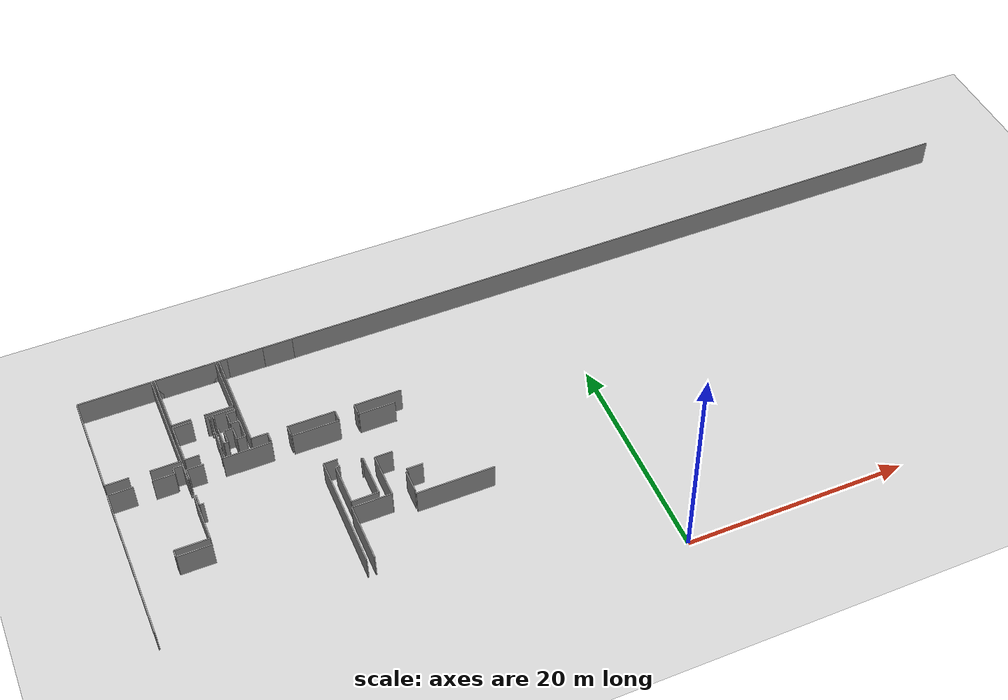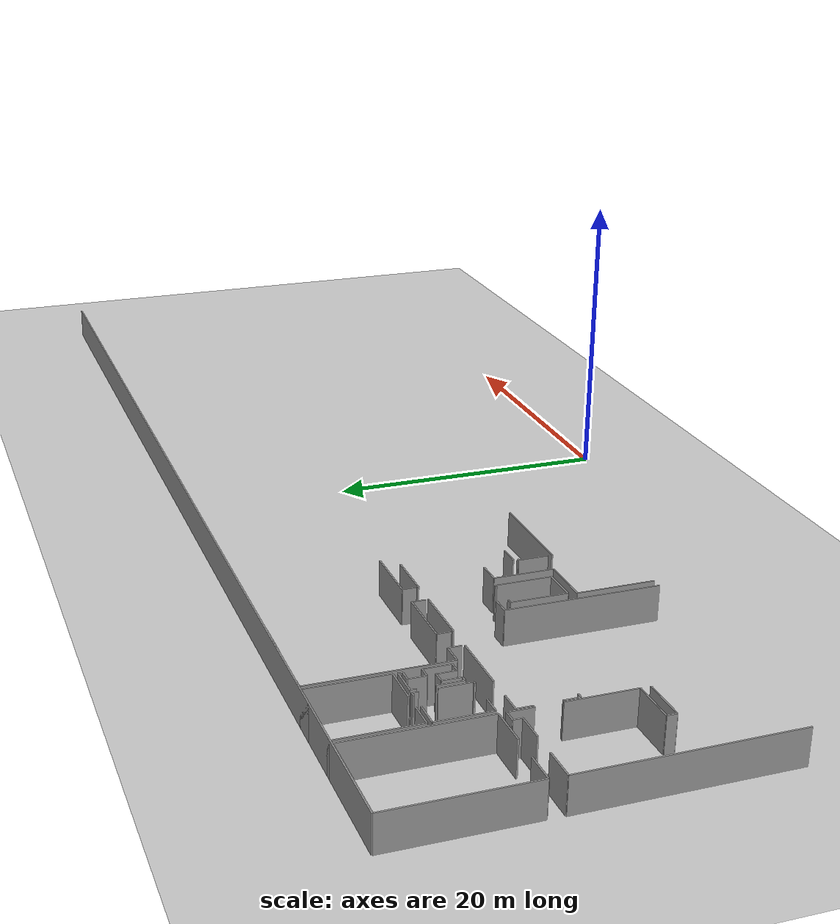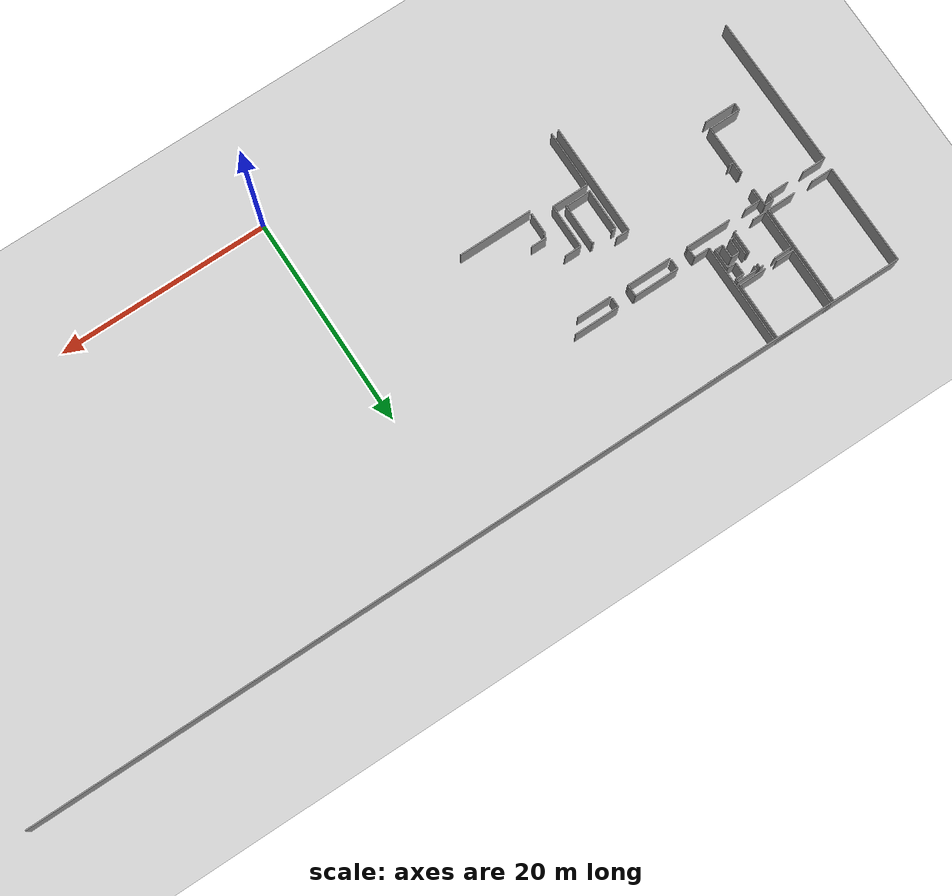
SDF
<sdf version="1.6">
 <world name="default">
  <model name="ground_plane">
   <static>1</static>
   <link name="link">
    <collision name="collision">
     <geometry><plane><normal>0 0 1</normal><size>100 100</size></plane></geometry>
     <surface><friction><ode><mu>100</mu><mu2>50</mu2></ode></friction></surface>
    </collision>
    <visual name="visual">
     <cast_shadows>0</cast_shadows>
     <geometry><plane><normal>0 0 1</normal><size>100 100</size></plane></geometry>
     <material>
      <script><uri>file://media/materials/scripts/gazebo.material</uri><name>Gazebo/Grey</name></script>
     </material>
    </visual>
   </link>
  </model>
  <model name="50052749">
   <static>1</static>
   <link name="Wall_0">
    <collision name="Wall_0_Collision">
     <geometry><box><size>2.05079957599 0.1 2.5</size></box></geometry>
     <pose>1.025399788 0 1.25 0 0 0</pose>
    </collision>
    <visual name="Wall_0_Visual">
     <pose>1.025399788 0 1.25 0 0 0</pose>
     <geometry><box><size>2.05079957599 0.1 2.5</size></box></geometry>
     <material>
      <script><uri>file://media/materials/scripts/gazebo.material</uri><name>Gazebo/Grey</name></script>
      <ambient>1 1 1 1</ambient>
     </material>
    </visual>
    <pose>0.0330937732988 -9.48650129078 0 0 0 0.0</pose>
   </link>
   <link name="Wall_1">
    <collision name="Wall_1_Collision">
     <geometry><box><size>2.67488981422 0.1 2.5</size></box></geometry>
     <pose>1.33744490711 0 1.25 0 0 0</pose>
    </collision>
    <visual name="Wall_1_Visual">
     <pose>1.33744490711 0 1.25 0 0 0</pose>
     <geometry><box><size>2.67488981422 0.1 2.5</size></box></geometry>
     <material>
      <script><uri>file://media/materials/scripts/gazebo.material</uri><name>Gazebo/Grey</name></script>
      <ambient>1 1 1 1</ambient>
     </material>
    </visual>
    <pose>3.85472721094 -9.48650129078 0 0 0 0.0</pose>
   </link>
   <link name="Wall_2">
    <collision name="Wall_2_Collision">
     <geometry><box><size>9.47166615103 0.1 2.5</size></box></geometry>
     <pose>4.73583307551 0 1.25 0 0 0</pose>
    </collision>
    <visual name="Wall_2_Visual">
     <pose>4.73583307551 0 1.25 0 0 0</pose>
     <geometry><box><size>9.47166615103 0.1 2.5</size></box></geometry>
     <material>
      <script><uri>file://media/materials/scripts/gazebo.material</uri><name>Gazebo/Grey</name></script>
      <ambient>1 1 1 1</ambient>
     </material>
    </visual>
    <pose>6.52961702516 -9.48650129078 0 0 0 1.57079632679</pose>
   </link>
   <link name="Wall_3">
    <collision name="Wall_3_Collision">
     <geometry><box><size>6.51960013593 0.1 2.5</size></box></geometry>
     <pose>3.25980006796 0 1.25 0 0 0</pose>
    </collision>
    <visual name="Wall_3_Visual">
     <pose>3.25980006796 0 1.25 0 0 0</pose>
     <geometry><box><size>6.51960013593 0.1 2.5</size></box></geometry>
     <material>
      <script><uri>file://media/materials/scripts/gazebo.material</uri><name>Gazebo/Grey</name></script>
      <ambient>1 1 1 1</ambient>
     </material>
    </visual>
    <pose>6.52961702516 -0.0148351397546 0 0 0 3.14159265359</pose>
   </link>
   <link name="Wall_4">
    <collision name="Wall_4_Collision">
     <geometry><box><size>9.47169426339 0.1 2.5</size></box></geometry>
     <pose>4.73584713169 0 1.25 0 0 0</pose>
    </collision>
    <visual name="Wall_4_Visual">
     <pose>4.73584713169 0 1.25 0 0 0</pose>
     <geometry><box><size>9.47169426339 0.1 2.5</size></box></geometry>
     <material>
      <script><uri>file://media/materials/scripts/gazebo.material</uri><name>Gazebo/Grey</name></script>
      <ambient>1 1 1 1</ambient>
     </material>
    </visual>
    <pose>0.010016889236 -0.0148351397546 0 0 0 -1.5683599193</pose>
   </link>
   <link name="Wall_7">
    <collision name="Wall_7_Collision">
     <geometry><box><size>2.99948774389 0.1 2.5</size></box></geometry>
     <pose>1.49974387195 0 1.25 0 0 0</pose>
    </collision>
    <visual name="Wall_7_Visual">
     <pose>1.49974387195 0 1.25 0 0 0</pose>
     <geometry><box><size>2.99948774389 0.1 2.5</size></box></geometry>
     <material>
      <script><uri>file://media/materials/scripts/gazebo.material</uri><name>Gazebo/Grey</name></script>
      <ambient>1 1 1 1</ambient>
     </material>
    </visual>
    <pose>6.51998052412 -18.7221999625 0 0 0 3.14159265359</pose>
   </link>
   <link name="Wall_8">
    <collision name="Wall_8_Collision">
     <geometry><box><size>0.65933954465 0.1 2.5</size></box></geometry>
     <pose>0.329669772325 0 1.25 0 0 0</pose>
    </collision>
    <visual name="Wall_8_Visual">
     <pose>0.329669772325 0 1.25 0 0 0</pose>
     <geometry><box><size>0.65933954465 0.1 2.5</size></box></geometry>
     <material>
      <script><uri>file://media/materials/scripts/gazebo.material</uri><name>Gazebo/Grey</name></script>
      <ambient>1 1 1 1</ambient>
     </material>
    </visual>
    <pose>3.52049278023 -18.7221999625 0 0 0 1.57079632679</pose>
   </link>
   <link name="Wall_9">
    <collision name="Wall_9_Collision">
     <geometry><box><size>3.00506677081 0.1 2.5</size></box></geometry>
     <pose>1.5025333854 0 1.25 0 0 0</pose>
    </collision>
    <visual name="Wall_9_Visual">
     <pose>1.5025333854 0 1.25 0 0 0</pose>
     <geometry><box><size>3.00506677081 0.1 2.5</size></box></geometry>
     <material>
      <script><uri>file://media/materials/scripts/gazebo.material</uri><name>Gazebo/Grey</name></script>
      <ambient>1 1 1 1</ambient>
     </material>
    </visual>
    <pose>3.52049278023 -18.0628604178 0 0 0 0.0</pose>
   </link>
   <link name="Wall_10">
    <collision name="Wall_10_Collision">
     <geometry><box><size>4.69246882085 0.1 2.5</size></box></geometry>
     <pose>2.34623441042 0 1.25 0 0 0</pose>
    </collision>
    <visual name="Wall_10_Visual">
     <pose>2.34623441042 0 1.25 0 0 0</pose>
     <geometry><box><size>4.69246882085 0.1 2.5</size></box></geometry>
     <material>
      <script><uri>file://media/materials/scripts/gazebo.material</uri><name>Gazebo/Grey</name></script>
      <ambient>1 1 1 1</ambient>
     </material>
    </visual>
    <pose>6.52555955104 -18.0628604178 0 0 0 1.57079632679</pose>
   </link>
   <link name="Wall_11">
    <collision name="Wall_11_Collision">
     <geometry><box><size>1.68435894445 0.1 2.5</size></box></geometry>
     <pose>0.842179472224 0 1.25 0 0 0</pose>
    </collision>
    <visual name="Wall_11_Visual">
     <pose>0.842179472224 0 1.25 0 0 0</pose>
     <geometry><box><size>1.68435894445 0.1 2.5</size></box></geometry>
     <material>
      <script><uri>file://media/materials/scripts/gazebo.material</uri><name>Gazebo/Grey</name></script>
      <ambient>1 1 1 1</ambient>
     </material>
    </visual>
    <pose>6.52555955104 -11.644950727 0 0 0 1.57079632679</pose>
   </link>
   <link name="Wall_12">
    <collision name="Wall_12_Collision">
     <geometry><box><size>0.826329963939 0.1 2.5</size></box></geometry>
     <pose>0.41316498197 0 1.25 0 0 0</pose>
    </collision>
    <visual name="Wall_12_Visual">
     <pose>0.41316498197 0 1.25 0 0 0</pose>
     <geometry><box><size>0.826329963939 0.1 2.5</size></box></geometry>
     <material>
      <script><uri>file://media/materials/scripts/gazebo.material</uri><name>Gazebo/Grey</name></script>
      <ambient>1 1 1 1</ambient>
     </material>
    </visual>
    <pose>6.52555955104 -9.9605917826 0 0 0 3.14159265359</pose>
   </link>
   <link name="Wall_13">
    <collision name="Wall_13_Collision">
     <geometry><box><size>0.608621118138 0.1 2.5</size></box></geometry>
     <pose>0.304310559069 0 1.25 0 0 0</pose>
    </collision>
    <visual name="Wall_13_Visual">
     <pose>0.304310559069 0 1.25 0 0 0</pose>
     <geometry><box><size>0.608621118138 0.1 2.5</size></box></geometry>
     <material>
      <script><uri>file://media/materials/scripts/gazebo.material</uri><name>Gazebo/Grey</name></script>
      <ambient>1 1 1 1</ambient>
     </material>
    </visual>
    <pose>5.6992295871 -9.9605917826 0 0 0 -1.57079632679</pose>
   </link>
   <link name="Wall_14">
    <collision name="Wall_14_Collision">
     <geometry><box><size>1.93414719502 0.1 2.5</size></box></geometry>
     <pose>0.967073597509 0 1.25 0 0 0</pose>
    </collision>
    <visual name="Wall_14_Visual">
     <pose>0.967073597509 0 1.25 0 0 0</pose>
     <geometry><box><size>1.93414719502 0.1 2.5</size></box></geometry>
     <material>
      <script><uri>file://media/materials/scripts/gazebo.material</uri><name>Gazebo/Grey</name></script>
      <ambient>1 1 1 1</ambient>
     </material>
    </visual>
    <pose>5.6992295871 -10.5692129007 0 0 0 3.14159265359</pose>
   </link>
   <link name="Wall_15">
    <collision name="Wall_15_Collision">
     <geometry><box><size>2.19002165677 0.1 2.5</size></box></geometry>
     <pose>1.09501082838 0 1.25 0 0 0</pose>
    </collision>
    <visual name="Wall_15_Visual">
     <pose>1.09501082838 0 1.25 0 0 0</pose>
     <geometry><box><size>2.19002165677 0.1 2.5</size></box></geometry>
     <material>
      <script><uri>file://media/materials/scripts/gazebo.material</uri><name>Gazebo/Grey</name></script>
      <ambient>1 1 1 1</ambient>
     </material>
    </visual>
    <pose>2.19002165677 -10.5692129007 0 0 0 3.14159265359</pose>
   </link>
   <link name="Wall_16">
    <collision name="Wall_16_Collision">
     <geometry><box><size>14.3738652075 0.1 2.5</size></box></geometry>
     <pose>7.18693260374 0 1.25 0 0 0</pose>
    </collision>
    <visual name="Wall_16_Visual">
     <pose>7.18693260374 0 1.25 0 0 0</pose>
     <geometry><box><size>14.3738652075 0.1 2.5</size></box></geometry>
     <material>
      <script><uri>file://media/materials/scripts/gazebo.material</uri><name>Gazebo/Grey</name></script>
      <ambient>1 1 1 1</ambient>
     </material>
    </visual>
    <pose>0.0 -10.5692129007 0 0 0 -1.56343048113</pose>
   </link>
   <link name="Wall_17">
    <collision name="Wall_17_Collision">
     <geometry><box><size>5.46212094316 0.1 2.5</size></box></geometry>
     <pose>2.73106047158 0 1.25 0 0 0</pose>
    </collision>
    <visual name="Wall_17_Visual">
     <pose>2.73106047158 0 1.25 0 0 0</pose>
     <geometry><box><size>5.46212094316 0.1 2.5</size></box></geometry>
     <material>
      <script><uri>file://media/materials/scripts/gazebo.material</uri><name>Gazebo/Grey</name></script>
      <ambient>1 1 1 1</ambient>
     </material>
    </visual>
    <pose>6.82492506352 -5.46212094316 0 0 0 1.57079632679</pose>
   </link>
   <link name="Wall_18">
    <collision name="Wall_18_Collision">
     <geometry><box><size>0.476119228877 0.1 2.5</size></box></geometry>
     <pose>0.238059614439 0 1.25 0 0 0</pose>
    </collision>
    <visual name="Wall_18_Visual">
     <pose>0.238059614439 0 1.25 0 0 0</pose>
     <geometry><box><size>0.476119228877 0.1 2.5</size></box></geometry>
     <material>
      <script><uri>file://media/materials/scripts/gazebo.material</uri><name>Gazebo/Grey</name></script>
      <ambient>1 1 1 1</ambient>
     </material>
    </visual>
    <pose>6.82492506352 -0.0 0 0 0 0.0</pose>
   </link>
   <link name="Wall_19">
    <collision name="Wall_19_Collision">
     <geometry><box><size>1.69640457074 0.1 2.5</size></box></geometry>
     <pose>0.848202285372 0 1.25 0 0 0</pose>
    </collision>
    <visual name="Wall_19_Visual">
     <pose>0.848202285372 0 1.25 0 0 0</pose>
     <geometry><box><size>1.69640457074 0.1 2.5</size></box></geometry>
     <material>
      <script><uri>file://media/materials/scripts/gazebo.material</uri><name>Gazebo/Grey</name></script>
      <ambient>1 1 1 1</ambient>
     </material>
    </visual>
    <pose>10.5706076575 -0.0 0 0 0 0.0</pose>
   </link>
   <link name="Wall_20">
    <collision name="Wall_20_Collision">
     <geometry><box><size>5.44436949388 0.1 2.5</size></box></geometry>
     <pose>2.72218474694 0 1.25 0 0 0</pose>
    </collision>
    <visual name="Wall_20_Visual">
     <pose>2.72218474694 0 1.25 0 0 0</pose>
     <geometry><box><size>5.44436949388 0.1 2.5</size></box></geometry>
     <material>
      <script><uri>file://media/materials/scripts/gazebo.material</uri><name>Gazebo/Grey</name></script>
      <ambient>1 1 1 1</ambient>
     </material>
    </visual>
    <pose>12.2670122282 -0.0 0 0 0 -1.57079632679</pose>
   </link>
   <link name="Wall_21">
    <collision name="Wall_21_Collision">
     <geometry><box><size>2.57535490219 0.1 2.5</size></box></geometry>
     <pose>1.28767745109 0 1.25 0 0 0</pose>
    </collision>
    <visual name="Wall_21_Visual">
     <pose>1.28767745109 0 1.25 0 0 0</pose>
     <geometry><box><size>2.57535490219 0.1 2.5</size></box></geometry>
     <material>
      <script><uri>file://media/materials/scripts/gazebo.material</uri><name>Gazebo/Grey</name></script>
      <ambient>1 1 1 1</ambient>
     </material>
    </visual>
    <pose>12.2670122282 -5.44436949388 0 0 0 3.14159265359</pose>
   </link>
   <link name="Wall_22">
    <collision name="Wall_22_Collision">
     <geometry><box><size>1.68457927209 0.1 2.5</size></box></geometry>
     <pose>0.842289636044 0 1.25 0 0 0</pose>
    </collision>
    <visual name="Wall_22_Visual">
     <pose>0.842289636044 0 1.25 0 0 0</pose>
     <geometry><box><size>1.68457927209 0.1 2.5</size></box></geometry>
     <material>
      <script><uri>file://media/materials/scripts/gazebo.material</uri><name>Gazebo/Grey</name></script>
      <ambient>1 1 1 1</ambient>
     </material>
    </visual>
    <pose>8.50941080404 -5.44436949388 0 0 0 -3.13105484269</pose>
   </link>
   <link name="Wall_23">
    <collision name="Wall_23_Collision">
     <geometry><box><size>1.24767329218 0.1 2.5</size></box></geometry>
     <pose>0.623836646092 0 1.25 0 0 0</pose>
    </collision>
    <visual name="Wall_23_Visual">
     <pose>0.623836646092 0 1.25 0 0 0</pose>
     <geometry><box><size>1.24767329218 0.1 2.5</size></box></geometry>
     <material>
      <script><uri>file://media/materials/scripts/gazebo.material</uri><name>Gazebo/Grey</name></script>
      <ambient>1 1 1 1</ambient>
     </material>
    </visual>
    <pose>6.83151845897 -9.47737197401 0 0 0 0.0</pose>
   </link>
   <link name="Wall_24">
    <collision name="Wall_24_Collision">
     <geometry><box><size>0.189052934822 0.1 2.5</size></box></geometry>
     <pose>0.0945264674109 0 1.25 0 0 0</pose>
    </collision>
    <visual name="Wall_24_Visual">
     <pose>0.0945264674109 0 1.25 0 0 0</pose>
     <geometry><box><size>0.189052934822 0.1 2.5</size></box></geometry>
     <material>
      <script><uri>file://media/materials/scripts/gazebo.material</uri><name>Gazebo/Grey</name></script>
      <ambient>1 1 1 1</ambient>
     </material>
    </visual>
    <pose>9.82834348547 -9.47737197401 0 0 0 0.0</pose>
   </link>
   <link name="Wall_25">
    <collision name="Wall_25_Collision">
     <geometry><box><size>2.15844943626 0.1 2.5</size></box></geometry>
     <pose>1.07922471813 0 1.25 0 0 0</pose>
    </collision>
    <visual name="Wall_25_Visual">
     <pose>1.07922471813 0 1.25 0 0 0</pose>
     <geometry><box><size>2.15844943626 0.1 2.5</size></box></geometry>
     <material>
      <script><uri>file://media/materials/scripts/gazebo.material</uri><name>Gazebo/Grey</name></script>
      <ambient>1 1 1 1</ambient>
     </material>
    </visual>
    <pose>10.0173964203 -9.47737197401 0 0 0 1.57079632679</pose>
   </link>
   <link name="Wall_26">
    <collision name="Wall_26_Collision">
     <geometry><box><size>0.38913712741 0.1 2.5</size></box></geometry>
     <pose>0.194568563705 0 1.25 0 0 0</pose>
    </collision>
    <visual name="Wall_26_Visual">
     <pose>0.194568563705 0 1.25 0 0 0</pose>
     <geometry><box><size>0.38913712741 0.1 2.5</size></box></geometry>
     <material>
      <script><uri>file://media/materials/scripts/gazebo.material</uri><name>Gazebo/Grey</name></script>
      <ambient>1 1 1 1</ambient>
     </material>
    </visual>
    <pose>10.0173964203 -6.14580533254 0 0 0 1.57079632679</pose>
   </link>
   <link name="Wall_27">
    <collision name="Wall_27_Collision">
     <geometry><box><size>0.339813457627 0.1 2.5</size></box></geometry>
     <pose>0.169906728814 0 1.25 0 0 0</pose>
    </collision>
    <visual name="Wall_27_Visual">
     <pose>0.169906728814 0 1.25 0 0 0</pose>
     <geometry><box><size>0.339813457627 0.1 2.5</size></box></geometry>
     <material>
      <script><uri>file://media/materials/scripts/gazebo.material</uri><name>Gazebo/Grey</name></script>
      <ambient>1 1 1 1</ambient>
     </material>
    </visual>
    <pose>10.0173964203 -5.75666820513 0 0 0 3.14159265359</pose>
   </link>
   <link name="Wall_28">
    <collision name="Wall_28_Collision">
     <geometry><box><size>1.68309098379 0.1 2.5</size></box></geometry>
     <pose>0.841545491893 0 1.25 0 0 0</pose>
    </collision>
    <visual name="Wall_28_Visual">
     <pose>0.841545491893 0 1.25 0 0 0</pose>
     <geometry><box><size>1.68309098379 0.1 2.5</size></box></geometry>
     <material>
      <script><uri>file://media/materials/scripts/gazebo.material</uri><name>Gazebo/Grey</name></script>
      <ambient>1 1 1 1</ambient>
     </material>
    </visual>
    <pose>8.51093235683 -5.75666820513 0 0 0 3.14159265359</pose>
   </link>
   <link name="Wall_29">
    <collision name="Wall_29_Collision">
     <geometry><box><size>3.72070558588 0.1 2.5</size></box></geometry>
     <pose>1.86035279294 0 1.25 0 0 0</pose>
    </collision>
    <visual name="Wall_29_Visual">
     <pose>1.86035279294 0 1.25 0 0 0</pose>
     <geometry><box><size>3.72070558588 0.1 2.5</size></box></geometry>
     <material>
      <script><uri>file://media/materials/scripts/gazebo.material</uri><name>Gazebo/Grey</name></script>
      <ambient>1 1 1 1</ambient>
     </material>
    </visual>
    <pose>6.82784137305 -5.75666820513 0 0 0 -1.56980805013</pose>
   </link>
   <link name="Wall_30">
    <collision name="Wall_30_Collision">
     <geometry><box><size>1.76918551279 0.1 2.5</size></box></geometry>
     <pose>0.884592756394 0 1.25 0 0 0</pose>
    </collision>
    <visual name="Wall_30_Visual">
     <pose>0.884592756394 0 1.25 0 0 0</pose>
     <geometry><box><size>1.76918551279 0.1 2.5</size></box></geometry>
     <material>
      <script><uri>file://media/materials/scripts/gazebo.material</uri><name>Gazebo/Grey</name></script>
      <ambient>1 1 1 1</ambient>
     </material>
    </visual>
    <pose>10.3408531854 -9.08810805054 0 0 0 1.57079632679</pose>
   </link>
   <link name="Wall_31">
    <collision name="Wall_31_Collision">
     <geometry><box><size>0.398012852049 0.1 2.5</size></box></geometry>
     <pose>0.199006426025 0 1.25 0 0 0</pose>
    </collision>
    <visual name="Wall_31_Visual">
     <pose>0.199006426025 0 1.25 0 0 0</pose>
     <geometry><box><size>0.398012852049 0.1 2.5</size></box></geometry>
     <material>
      <script><uri>file://media/materials/scripts/gazebo.material</uri><name>Gazebo/Grey</name></script>
      <ambient>1 1 1 1</ambient>
     </material>
    </visual>
    <pose>10.3408531854 -6.16140124869 0 0 0 1.57079632679</pose>
   </link>
   <link name="Wall_32">
    <collision name="Wall_32_Collision">
     <geometry><box><size>1.91411341655 0.1 2.5</size></box></geometry>
     <pose>0.957056708273 0 1.25 0 0 0</pose>
    </collision>
    <visual name="Wall_32_Visual">
     <pose>0.957056708273 0 1.25 0 0 0</pose>
     <geometry><box><size>1.91411341655 0.1 2.5</size></box></geometry>
     <material>
      <script><uri>file://media/materials/scripts/gazebo.material</uri><name>Gazebo/Grey</name></script>
      <ambient>1 1 1 1</ambient>
     </material>
    </visual>
    <pose>10.3408531854 -5.76338839664 0 0 0 0.0</pose>
   </link>
   <link name="Wall_33">
    <collision name="Wall_33_Collision">
     <geometry><box><size>0.279965714344 0.1 2.5</size></box></geometry>
     <pose>0.139982857172 0 1.25 0 0 0</pose>
    </collision>
    <visual name="Wall_33_Visual">
     <pose>0.139982857172 0 1.25 0 0 0</pose>
     <geometry><box><size>0.279965714344 0.1 2.5</size></box></geometry>
     <material>
      <script><uri>file://media/materials/scripts/gazebo.material</uri><name>Gazebo/Grey</name></script>
      <ambient>1 1 1 1</ambient>
     </material>
    </visual>
    <pose>12.2549666019 -5.76338839664 0 0 0 -1.57079632679</pose>
   </link>
   <link name="Wall_34">
    <collision name="Wall_34_Collision">
     <geometry><box><size>0.781063768278 0.1 2.5</size></box></geometry>
     <pose>0.390531884139 0 1.25 0 0 0</pose>
    </collision>
    <visual name="Wall_34_Visual">
     <pose>0.390531884139 0 1.25 0 0 0</pose>
     <geometry><box><size>0.781063768278 0.1 2.5</size></box></geometry>
     <material>
      <script><uri>file://media/materials/scripts/gazebo.material</uri><name>Gazebo/Grey</name></script>
      <ambient>1 1 1 1</ambient>
     </material>
    </visual>
    <pose>12.2549666019 -6.04335411098 0 0 0 3.14159265359</pose>
   </link>
   <link name="Wall_35">
    <collision name="Wall_35_Collision">
     <geometry><box><size>1.17083487602 0.1 2.5</size></box></geometry>
     <pose>0.585417438009 0 1.25 0 0 0</pose>
    </collision>
    <visual name="Wall_35_Visual">
     <pose>0.585417438009 0 1.25 0 0 0</pose>
     <geometry><box><size>1.17083487602 0.1 2.5</size></box></geometry>
     <material>
      <script><uri>file://media/materials/scripts/gazebo.material</uri><name>Gazebo/Grey</name></script>
      <ambient>1 1 1 1</ambient>
     </material>
    </visual>
    <pose>11.4739028336 -6.04335411098 0 0 0 -1.57079632679</pose>
   </link>
   <link name="Wall_36">
    <collision name="Wall_36_Collision">
     <geometry><box><size>0.783472893537 0.1 2.5</size></box></geometry>
     <pose>0.391736446768 0 1.25 0 0 0</pose>
    </collision>
    <visual name="Wall_36_Visual">
     <pose>0.391736446768 0 1.25 0 0 0</pose>
     <geometry><box><size>0.783472893537 0.1 2.5</size></box></geometry>
     <material>
      <script><uri>file://media/materials/scripts/gazebo.material</uri><name>Gazebo/Grey</name></script>
      <ambient>1 1 1 1</ambient>
     </material>
    </visual>
    <pose>11.4739028336 -7.214188987 0 0 0 0.0</pose>
   </link>
   <link name="Wall_37">
    <collision name="Wall_37_Collision">
     <geometry><box><size>1.84716509355 0.1 2.5</size></box></geometry>
     <pose>0.923582546775 0 1.25 0 0 0</pose>
    </collision>
    <visual name="Wall_37_Visual">
     <pose>0.923582546775 0 1.25 0 0 0</pose>
     <geometry><box><size>1.84716509355 0.1 2.5</size></box></geometry>
     <material>
      <script><uri>file://media/materials/scripts/gazebo.material</uri><name>Gazebo/Grey</name></script>
      <ambient>1 1 1 1</ambient>
     </material>
    </visual>
    <pose>12.2573757272 -7.214188987 0 0 0 -1.57079632679</pose>
   </link>
   <link name="Wall_38">
    <collision name="Wall_38_Collision">
     <geometry><box><size>0.758240476347 0.1 2.5</size></box></geometry>
     <pose>0.379120238174 0 1.25 0 0 0</pose>
    </collision>
    <visual name="Wall_38_Visual">
     <pose>0.379120238174 0 1.25 0 0 0</pose>
     <geometry><box><size>0.758240476347 0.1 2.5</size></box></geometry>
     <material>
      <script><uri>file://media/materials/scripts/gazebo.material</uri><name>Gazebo/Grey</name></script>
      <ambient>1 1 1 1</ambient>
     </material>
    </visual>
    <pose>12.2573757272 -9.06135408055 0 0 0 3.14159265359</pose>
   </link>
   <link name="Wall_39">
    <collision name="Wall_39_Collision">
     <geometry><box><size>1.28355657894 0.1 2.5</size></box></geometry>
     <pose>0.64177828947 0 1.25 0 0 0</pose>
    </collision>
    <visual name="Wall_39_Visual">
     <pose>0.64177828947 0 1.25 0 0 0</pose>
     <geometry><box><size>1.28355657894 0.1 2.5</size></box></geometry>
     <material>
      <script><uri>file://media/materials/scripts/gazebo.material</uri><name>Gazebo/Grey</name></script>
      <ambient>1 1 1 1</ambient>
     </material>
    </visual>
    <pose>11.4991352508 -9.06135408055 0 0 0 1.57079632679</pose>
   </link>
   <link name="Wall_40">
    <collision name="Wall_40_Collision">
     <geometry><box><size>0.787657163724 0.1 2.5</size></box></geometry>
     <pose>0.393828581862 0 1.25 0 0 0</pose>
    </collision>
    <visual name="Wall_40_Visual">
     <pose>0.393828581862 0 1.25 0 0 0</pose>
     <geometry><box><size>0.787657163724 0.1 2.5</size></box></geometry>
     <material>
      <script><uri>file://media/materials/scripts/gazebo.material</uri><name>Gazebo/Grey</name></script>
      <ambient>1 1 1 1</ambient>
     </material>
    </visual>
    <pose>11.4991352508 -7.77779750161 0 0 0 3.14159265359</pose>
   </link>
   <link name="Wall_41">
    <collision name="Wall_41_Collision">
     <geometry><box><size>1.30270278495 0.1 2.5</size></box></geometry>
     <pose>0.651351392474 0 1.25 0 0 0</pose>
    </collision>
    <visual name="Wall_41_Visual">
     <pose>0.651351392474 0 1.25 0 0 0</pose>
     <geometry><box><size>1.30270278495 0.1 2.5</size></box></geometry>
     <material>
      <script><uri>file://media/materials/scripts/gazebo.material</uri><name>Gazebo/Grey</name></script>
      <ambient>1 1 1 1</ambient>
     </material>
    </visual>
    <pose>10.7114780871 -7.77779750161 0 0 0 -1.57079632679</pose>
   </link>
   <link name="Wall_42">
    <collision name="Wall_42_Collision">
     <geometry><box><size>0.370702975248 0.1 2.5</size></box></geometry>
     <pose>0.185351487624 0 1.25 0 0 0</pose>
    </collision>
    <visual name="Wall_42_Visual">
     <pose>0.185351487624 0 1.25 0 0 0</pose>
     <geometry><box><size>0.370702975248 0.1 2.5</size></box></geometry>
     <material>
      <script><uri>file://media/materials/scripts/gazebo.material</uri><name>Gazebo/Grey</name></script>
      <ambient>1 1 1 1</ambient>
     </material>
    </visual>
    <pose>10.7114780871 -9.08050028656 0 0 0 -3.1210686799</pose>
   </link>
   <link name="Wall_44">
    <collision name="Wall_44_Collision">
     <geometry><box><size>0.354775393448 0.1 2.5</size></box></geometry>
     <pose>0.177387696724 0 1.25 0 0 0</pose>
    </collision>
    <visual name="Wall_44_Visual">
     <pose>0.177387696724 0 1.25 0 0 0</pose>
     <geometry><box><size>0.354775393448 0.1 2.5</size></box></geometry>
     <material>
      <script><uri>file://media/materials/scripts/gazebo.material</uri><name>Gazebo/Grey</name></script>
      <ambient>1 1 1 1</ambient>
     </material>
    </visual>
    <pose>7.02817915777 -14.4921563953 0 0 0 3.14159265359</pose>
   </link>
   <link name="Wall_45">
    <collision name="Wall_45_Collision">
     <geometry><box><size>1.10261859236 0.1 2.5</size></box></geometry>
     <pose>0.55130929618 0 1.25 0 0 0</pose>
    </collision>
    <visual name="Wall_45_Visual">
     <pose>0.55130929618 0 1.25 0 0 0</pose>
     <geometry><box><size>1.10261859236 0.1 2.5</size></box></geometry>
     <material>
      <script><uri>file://media/materials/scripts/gazebo.material</uri><name>Gazebo/Grey</name></script>
      <ambient>1 1 1 1</ambient>
     </material>
    </visual>
    <pose>6.67340376432 -14.4921563953 0 0 0 1.57079632679</pose>
   </link>
   <link name="Wall_46">
    <collision name="Wall_46_Collision">
     <geometry><box><size>1.09209451886 0.1 2.5</size></box></geometry>
     <pose>0.54604725943 0 1.25 0 0 0</pose>
    </collision>
    <visual name="Wall_46_Visual">
     <pose>0.54604725943 0 1.25 0 0 0</pose>
     <geometry><box><size>1.09209451886 0.1 2.5</size></box></geometry>
     <material>
      <script><uri>file://media/materials/scripts/gazebo.material</uri><name>Gazebo/Grey</name></script>
      <ambient>1 1 1 1</ambient>
     </material>
    </visual>
    <pose>6.67340376432 -11.6529388792 0 0 0 1.57079632679</pose>
   </link>
   <link name="Wall_47">
    <collision name="Wall_47_Collision">
     <geometry><box><size>1.46855203964 0.1 2.5</size></box></geometry>
     <pose>0.734276019821 0 1.25 0 0 0</pose>
    </collision>
    <visual name="Wall_47_Visual">
     <pose>0.734276019821 0 1.25 0 0 0</pose>
     <geometry><box><size>1.46855203964 0.1 2.5</size></box></geometry>
     <material>
      <script><uri>file://media/materials/scripts/gazebo.material</uri><name>Gazebo/Grey</name></script>
      <ambient>1 1 1 1</ambient>
     </material>
    </visual>
    <pose>6.67340376432 -10.5608443604 0 0 0 0.0</pose>
   </link>
   <link name="Wall_48">
    <collision name="Wall_48_Collision">
     <geometry><box><size>4.30193693671 0.1 2.5</size></box></geometry>
     <pose>2.15096846835 0 1.25 0 0 0</pose>
    </collision>
    <visual name="Wall_48_Visual">
     <pose>2.15096846835 0 1.25 0 0 0</pose>
     <geometry><box><size>4.30193693671 0.1 2.5</size></box></geometry>
     <material>
      <script><uri>file://media/materials/scripts/gazebo.material</uri><name>Gazebo/Grey</name></script>
      <ambient>1 1 1 1</ambient>
     </material>
    </visual>
    <pose>9.75936642542 -10.5608443604 0 0 0 0.0</pose>
   </link>
   <link name="Wall_49">
    <collision name="Wall_49_Collision">
     <geometry><box><size>4.23524220585 0.1 2.5</size></box></geometry>
     <pose>2.11762110292 0 1.25 0 0 0</pose>
    </collision>
    <visual name="Wall_49_Visual">
     <pose>2.11762110292 0 1.25 0 0 0</pose>
     <geometry><box><size>4.23524220585 0.1 2.5</size></box></geometry>
     <material>
      <script><uri>file://media/materials/scripts/gazebo.material</uri><name>Gazebo/Grey</name></script>
      <ambient>1 1 1 1</ambient>
     </material>
    </visual>
    <pose>15.8370822704 -10.5608443604 0 0 0 0.0</pose>
   </link>
   <link name="Wall_50">
    <collision name="Wall_50_Collision">
     <geometry><box><size>3.28579326155 0.1 2.5</size></box></geometry>
     <pose>1.64289663077 0 1.25 0 0 0</pose>
    </collision>
    <visual name="Wall_50_Visual">
     <pose>1.64289663077 0 1.25 0 0 0</pose>
     <geometry><box><size>3.28579326155 0.1 2.5</size></box></geometry>
     <material>
      <script><uri>file://media/materials/scripts/gazebo.material</uri><name>Gazebo/Grey</name></script>
      <ambient>1 1 1 1</ambient>
     </material>
    </visual>
    <pose>21.8063874786 -10.5608443604 0 0 0 0.0</pose>
   </link>
   <link name="Wall_54">
    <collision name="Wall_54_Collision">
     <geometry><box><size>1.21774942054 0.1 2.5</size></box></geometry>
     <pose>0.608874710271 0 1.25 0 0 0</pose>
    </collision>
    <visual name="Wall_54_Visual">
     <pose>0.608874710271 0 1.25 0 0 0</pose>
     <geometry><box><size>1.21774942054 0.1 2.5</size></box></geometry>
     <material>
      <script><uri>file://media/materials/scripts/gazebo.material</uri><name>Gazebo/Grey</name></script>
      <ambient>1 1 1 1</ambient>
     </material>
    </visual>
    <pose>18.5237641187 -14.4792231966 0 0 0 3.14159265359</pose>
   </link>
   <link name="Wall_55">
    <collision name="Wall_55_Collision">
     <geometry><box><size>10.5574208666 0.1 2.5</size></box></geometry>
     <pose>5.27871043329 0 1.25 0 0 0</pose>
    </collision>
    <visual name="Wall_55_Visual">
     <pose>5.27871043329 0 1.25 0 0 0</pose>
     <geometry><box><size>10.5574208666 0.1 2.5</size></box></geometry>
     <material>
      <script><uri>file://media/materials/scripts/gazebo.material</uri><name>Gazebo/Grey</name></script>
      <ambient>1 1 1 1</ambient>
     </material>
    </visual>
    <pose>17.3060146982 -14.4792231966 0 0 0 -1.57079632679</pose>
   </link>
   <link name="Wall_60">
    <collision name="Wall_60_Collision">
     <geometry><box><size>1.48135844234 0.1 2.5</size></box></geometry>
     <pose>0.740679221168 0 1.25 0 0 0</pose>
    </collision>
    <visual name="Wall_60_Visual">
     <pose>0.740679221168 0 1.25 0 0 0</pose>
     <geometry><box><size>1.48135844234 0.1 2.5</size></box></geometry>
     <material>
      <script><uri>file://media/materials/scripts/gazebo.material</uri><name>Gazebo/Grey</name></script>
      <ambient>1 1 1 1</ambient>
     </material>
    </visual>
    <pose>12.5788037552 -9.48523333012 0 0 0 0.0</pose>
   </link>
   <link name="Wall_61">
    <collision name="Wall_61_Collision">
     <geometry><box><size>0.907859834556 0.1 2.5</size></box></geometry>
     <pose>0.453929917278 0 1.25 0 0 0</pose>
    </collision>
    <visual name="Wall_61_Visual">
     <pose>0.453929917278 0 1.25 0 0 0</pose>
     <geometry><box><size>0.907859834556 0.1 2.5</size></box></geometry>
     <material>
      <script><uri>file://media/materials/scripts/gazebo.material</uri><name>Gazebo/Grey</name></script>
      <ambient>1 1 1 1</ambient>
     </material>
    </visual>
    <pose>14.0601621975 -9.48523333012 0 0 0 -1.57079632679</pose>
   </link>
   <link name="Wall_62">
    <collision name="Wall_62_Collision">
     <geometry><box><size>0.926752448432 0.1 2.5</size></box></geometry>
     <pose>0.463376224216 0 1.25 0 0 0</pose>
    </collision>
    <visual name="Wall_62_Visual">
     <pose>0.463376224216 0 1.25 0 0 0</pose>
     <geometry><box><size>0.926752448432 0.1 2.5</size></box></geometry>
     <material>
      <script><uri>file://media/materials/scripts/gazebo.material</uri><name>Gazebo/Grey</name></script>
      <ambient>1 1 1 1</ambient>
     </material>
    </visual>
    <pose>15.800057819 -10.3930931647 0 0 0 1.57079632679</pose>
   </link>
   <link name="Wall_63">
    <collision name="Wall_63_Collision">
     <geometry><box><size>4.25768510958 0.1 2.5</size></box></geometry>
     <pose>2.12884255479 0 1.25 0 0 0</pose>
    </collision>
    <visual name="Wall_63_Visual">
     <pose>2.12884255479 0 1.25 0 0 0</pose>
     <geometry><box><size>4.25768510958 0.1 2.5</size></box></geometry>
     <material>
      <script><uri>file://media/materials/scripts/gazebo.material</uri><name>Gazebo/Grey</name></script>
      <ambient>1 1 1 1</ambient>
     </material>
    </visual>
    <pose>15.800057819 -9.46634071625 0 0 0 0.0</pose>
   </link>
   <link name="Wall_64">
    <collision name="Wall_64_Collision">
     <geometry><box><size>0.931951087149 0.1 2.5</size></box></geometry>
     <pose>0.465975543575 0 1.25 0 0 0</pose>
    </collision>
    <visual name="Wall_64_Visual">
     <pose>0.465975543575 0 1.25 0 0 0</pose>
     <geometry><box><size>0.931951087149 0.1 2.5</size></box></geometry>
     <material>
      <script><uri>file://media/materials/scripts/gazebo.material</uri><name>Gazebo/Grey</name></script>
      <ambient>1 1 1 1</ambient>
     </material>
    </visual>
    <pose>20.0577429286 -9.46634071625 0 0 0 -1.57079632679</pose>
   </link>
   <link name="Wall_65">
    <collision name="Wall_65_Collision">
     <geometry><box><size>0.922187790046 0.1 2.5</size></box></geometry>
     <pose>0.461093895023 0 1.25 0 0 0</pose>
    </collision>
    <visual name="Wall_65_Visual">
     <pose>0.461093895023 0 1.25 0 0 0</pose>
     <geometry><box><size>0.922187790046 0.1 2.5</size></box></geometry>
     <material>
      <script><uri>file://media/materials/scripts/gazebo.material</uri><name>Gazebo/Grey</name></script>
      <ambient>1 1 1 1</ambient>
     </material>
    </visual>
    <pose>21.7848321474 -10.3982918034 0 0 0 1.57079632679</pose>
   </link>
   <link name="Wall_66">
    <collision name="Wall_66_Collision">
     <geometry><box><size>4.27099869654 0.1 2.5</size></box></geometry>
     <pose>2.13549934827 0 1.25 0 0 0</pose>
    </collision>
    <visual name="Wall_66_Visual">
     <pose>2.13549934827 0 1.25 0 0 0</pose>
     <geometry><box><size>4.27099869654 0.1 2.5</size></box></geometry>
     <material>
      <script><uri>file://media/materials/scripts/gazebo.material</uri><name>Gazebo/Grey</name></script>
      <ambient>1 1 1 1</ambient>
     </material>
    </visual>
    <pose>21.7848321474 -9.47610401335 0 0 0 0.0</pose>
   </link>
   <link name="Wall_75">
    <collision name="Wall_75_Collision">
     <geometry><box><size>2.71711290429 0.1 2.5</size></box></geometry>
     <pose>1.35855645214 0 1.25 0 0 0</pose>
    </collision>
    <visual name="Wall_75_Visual">
     <pose>1.35855645214 0 1.25 0 0 0</pose>
     <geometry><box><size>2.71711290429 0.1 2.5</size></box></geometry>
     <material>
      <script><uri>file://media/materials/scripts/gazebo.material</uri><name>Gazebo/Grey</name></script>
      <ambient>1 1 1 1</ambient>
     </material>
    </visual>
    <pose>19.2775667328 -0.0167370807488 0 0 0 3.14159265359</pose>
   </link>
   <link name="Wall_76">
    <collision name="Wall_76_Collision">
     <geometry><box><size>0.715003017746 0.1 2.5</size></box></geometry>
     <pose>0.357501508873 0 1.25 0 0 0</pose>
    </collision>
    <visual name="Wall_76_Visual">
     <pose>0.357501508873 0 1.25 0 0 0</pose>
     <geometry><box><size>0.715003017746 0.1 2.5</size></box></geometry>
     <material>
      <script><uri>file://media/materials/scripts/gazebo.material</uri><name>Gazebo/Grey</name></script>
      <ambient>1 1 1 1</ambient>
     </material>
    </visual>
    <pose>13.3000197802 -0.0167370807488 0 0 0 3.14159265359</pose>
   </link>
   <link name="Wall_77">
    <collision name="Wall_77_Collision">
     <geometry><box><size>9.46849828779 0.1 2.5</size></box></geometry>
     <pose>4.73424914389 0 1.25 0 0 0</pose>
    </collision>
    <visual name="Wall_77_Visual">
     <pose>4.73424914389 0 1.25 0 0 0</pose>
     <geometry><box><size>9.46849828779 0.1 2.5</size></box></geometry>
     <material>
      <script><uri>file://media/materials/scripts/gazebo.material</uri><name>Gazebo/Grey</name></script>
      <ambient>1 1 1 1</ambient>
     </material>
    </visual>
    <pose>12.5850167624 -0.0167370807488 0 0 0 -1.57145250347</pose>
   </link>
   <link name="Wall_214">
    <collision name="Wall_214_Collision">
     <geometry><box><size>2.07349607186 0.1 2.5</size></box></geometry>
     <pose>1.03674803593 0 1.25 0 0 0</pose>
    </collision>
    <visual name="Wall_214_Visual">
     <pose>1.03674803593 0 1.25 0 0 0</pose>
     <geometry><box><size>2.07349607186 0.1 2.5</size></box></geometry>
     <material>
      <script><uri>file://media/materials/scripts/gazebo.material</uri><name>Gazebo/Grey</name></script>
      <ambient>1 1 1 1</ambient>
     </material>
    </visual>
    <pose>23.3081600876 -20.1264663965 0 0 0 1.57079632679</pose>
   </link>
   <link name="Wall_215">
    <collision name="Wall_215_Collision">
     <geometry><box><size>0.174344591133 0.1 2.5</size></box></geometry>
     <pose>0.0871722955667 0 1.25 0 0 0</pose>
    </collision>
    <visual name="Wall_215_Visual">
     <pose>0.0871722955667 0 1.25 0 0 0</pose>
     <geometry><box><size>0.174344591133 0.1 2.5</size></box></geometry>
     <material>
      <script><uri>file://media/materials/scripts/gazebo.material</uri><name>Gazebo/Grey</name></script>
      <ambient>1 1 1 1</ambient>
     </material>
    </visual>
    <pose>23.3081600876 -18.0529703246 0 0 0 0.0</pose>
   </link>
   <link name="Wall_223">
    <collision name="Wall_223_Collision">
     <geometry><box><size>1.43723341127 0.1 2.5</size></box></geometry>
     <pose>0.718616705635 0 1.25 0 0 0</pose>
    </collision>
    <visual name="Wall_223_Visual">
     <pose>0.718616705635 0 1.25 0 0 0</pose>
     <geometry><box><size>1.43723341127 0.1 2.5</size></box></geometry>
     <material>
      <script><uri>file://media/materials/scripts/gazebo.material</uri><name>Gazebo/Grey</name></script>
      <ambient>1 1 1 1</ambient>
     </material>
    </visual>
    <pose>23.4532147875 -17.7435879229 0 0 0 0.0</pose>
   </link>
   <link name="Wall_236">
    <collision name="Wall_236_Collision">
     <geometry><box><size>3.89111768197 0.1 2.5</size></box></geometry>
     <pose>1.94555884098 0 1.25 0 0 0</pose>
    </collision>
    <visual name="Wall_236_Visual">
     <pose>1.94555884098 0 1.25 0 0 0</pose>
     <geometry><box><size>3.89111768197 0.1 2.5</size></box></geometry>
     <material>
      <script><uri>file://media/materials/scripts/gazebo.material</uri><name>Gazebo/Grey</name></script>
      <ambient>1 1 1 1</ambient>
     </material>
    </visual>
    <pose>18.126258451 -19.1119710702 0 0 0 1.57079632679</pose>
   </link>
   <link name="Wall_237">
    <collision name="Wall_237_Collision">
     <geometry><box><size>0.349449958664 0.1 2.5</size></box></geometry>
     <pose>0.174724979332 0 1.25 0 0 0</pose>
    </collision>
    <visual name="Wall_237_Visual">
     <pose>0.174724979332 0 1.25 0 0 0</pose>
     <geometry><box><size>0.349449958664 0.1 2.5</size></box></geometry>
     <material>
      <script><uri>file://media/materials/scripts/gazebo.material</uri><name>Gazebo/Grey</name></script>
      <ambient>1 1 1 1</ambient>
     </material>
    </visual>
    <pose>18.126258451 -15.2208533882 0 0 0 0.0</pose>
   </link>
   <link name="Wall_238">
    <collision name="Wall_238_Collision">
     <geometry><box><size>0.182205947243 0.1 2.5</size></box></geometry>
     <pose>0.0911029736213 0 1.25 0 0 0</pose>
    </collision>
    <visual name="Wall_238_Visual">
     <pose>0.0911029736213 0 1.25 0 0 0</pose>
     <geometry><box><size>0.182205947243 0.1 2.5</size></box></geometry>
     <material>
      <script><uri>file://media/materials/scripts/gazebo.material</uri><name>Gazebo/Grey</name></script>
      <ambient>1 1 1 1</ambient>
     </material>
    </visual>
    <pose>20.3261702009 -15.2208533882 0 0 0 0.0</pose>
   </link>
   <link name="Wall_239">
    <collision name="Wall_239_Collision">
     <geometry><box><size>3.86182779065 0.1 2.5</size></box></geometry>
     <pose>1.93091389533 0 1.25 0 0 0</pose>
    </collision>
    <visual name="Wall_239_Visual">
     <pose>1.93091389533 0 1.25 0 0 0</pose>
     <geometry><box><size>3.86182779065 0.1 2.5</size></box></geometry>
     <material>
      <script><uri>file://media/materials/scripts/gazebo.material</uri><name>Gazebo/Grey</name></script>
      <ambient>1 1 1 1</ambient>
     </material>
    </visual>
    <pose>20.5083761481 -15.2208533882 0 0 0 -1.57079632679</pose>
   </link>
   <link name="Wall_240">
    <collision name="Wall_240_Collision">
     <geometry><box><size>2.38229776077 0.1 2.5</size></box></geometry>
     <pose>1.19114888038 0 1.25 0 0 0</pose>
    </collision>
    <visual name="Wall_240_Visual">
     <pose>1.19114888038 0 1.25 0 0 0</pose>
     <geometry><box><size>2.38229776077 0.1 2.5</size></box></geometry>
     <material>
      <script><uri>file://media/materials/scripts/gazebo.material</uri><name>Gazebo/Grey</name></script>
      <ambient>1 1 1 1</ambient>
     </material>
    </visual>
    <pose>20.5083761481 -19.0826811789 0 0 0 -3.12929753676</pose>
   </link>
   <link name="Wall_244">
    <collision name="Wall_244_Collision">
     <geometry><box><size>1.56276151689 0.1 2.5</size></box></geometry>
     <pose>0.781380758443 0 1.25 0 0 0</pose>
    </collision>
    <visual name="Wall_244_Visual">
     <pose>0.781380758443 0 1.25 0 0 0</pose>
     <geometry><box><size>1.56276151689 0.1 2.5</size></box></geometry>
     <material>
      <script><uri>file://media/materials/scripts/gazebo.material</uri><name>Gazebo/Grey</name></script>
      <ambient>1 1 1 1</ambient>
     </material>
    </visual>
    <pose>23.0106965162 -15.5297286057 0 0 0 3.14159265359</pose>
   </link>
   <link name="Wall_245">
    <collision name="Wall_245_Collision">
     <geometry><box><size>4.14280787353 0.1 2.5</size></box></geometry>
     <pose>2.07140393676 0 1.25 0 0 0</pose>
    </collision>
    <visual name="Wall_245_Visual">
     <pose>2.07140393676 0 1.25 0 0 0</pose>
     <geometry><box><size>4.14280787353 0.1 2.5</size></box></geometry>
     <material>
      <script><uri>file://media/materials/scripts/gazebo.material</uri><name>Gazebo/Grey</name></script>
      <ambient>1 1 1 1</ambient>
     </material>
    </visual>
    <pose>21.4479349993 -15.5297286057 0 0 0 -1.57079632679</pose>
   </link>
   <link name="Wall_246">
    <collision name="Wall_246_Collision">
     <geometry><box><size>3.48549706594 0.1 2.5</size></box></geometry>
     <pose>1.74274853297 0 1.25 0 0 0</pose>
    </collision>
    <visual name="Wall_246_Visual">
     <pose>1.74274853297 0 1.25 0 0 0</pose>
     <geometry><box><size>3.48549706594 0.1 2.5</size></box></geometry>
     <material>
      <script><uri>file://media/materials/scripts/gazebo.material</uri><name>Gazebo/Grey</name></script>
      <ambient>1 1 1 1</ambient>
     </material>
    </visual>
    <pose>21.4479349993 -19.6725364792 0 0 0 3.14159265359</pose>
   </link>
   <link name="Wall_247">
    <collision name="Wall_247_Collision">
     <geometry><box><size>5.36894329833 0.1 2.5</size></box></geometry>
     <pose>2.68447164917 0 1.25 0 0 0</pose>
    </collision>
    <visual name="Wall_247_Visual">
     <pose>2.68447164917 0 1.25 0 0 0</pose>
     <geometry><box><size>5.36894329833 0.1 2.5</size></box></geometry>
     <material>
      <script><uri>file://media/materials/scripts/gazebo.material</uri><name>Gazebo/Grey</name></script>
      <ambient>1 1 1 1</ambient>
     </material>
    </visual>
    <pose>17.9624379333 -19.6725364792 0 0 0 -1.56824573364</pose>
   </link>
   <link name="Wall_250">
    <collision name="Wall_250_Collision">
     <geometry><box><size>6.95970928198 0.1 2.5</size></box></geometry>
     <pose>3.47985464099 0 1.25 0 0 0</pose>
    </collision>
    <visual name="Wall_250_Visual">
     <pose>3.47985464099 0 1.25 0 0 0</pose>
     <geometry><box><size>6.95970928198 0.1 2.5</size></box></geometry>
     <material>
      <script><uri>file://media/materials/scripts/gazebo.material</uri><name>Gazebo/Grey</name></script>
      <ambient>1 1 1 1</ambient>
     </material>
    </visual>
    <pose>23.2791237885 -20.4227888034 0 0 0 0.0</pose>
   </link>
   <link name="Wall_442">
    <collision name="Wall_442_Collision">
     <geometry><box><size>84.9974894379 0.1 2.5</size></box></geometry>
     <pose>42.4987447189 0 1.25 0 0 0</pose>
    </collision>
    <visual name="Wall_442_Visual">
     <pose>42.4987447189 0 1.25 0 0 0</pose>
     <geometry><box><size>84.9974894379 0.1 2.5</size></box></geometry>
     <material>
      <script><uri>file://media/materials/scripts/gazebo.material</uri><name>Gazebo/Grey</name></script>
      <ambient>1 1 1 1</ambient>
     </material>
    </visual>
   </link>
   <pose>-42.45 32.2703051221 0 0 0 0</pose>
  </model>
 </world>
</sdf>
